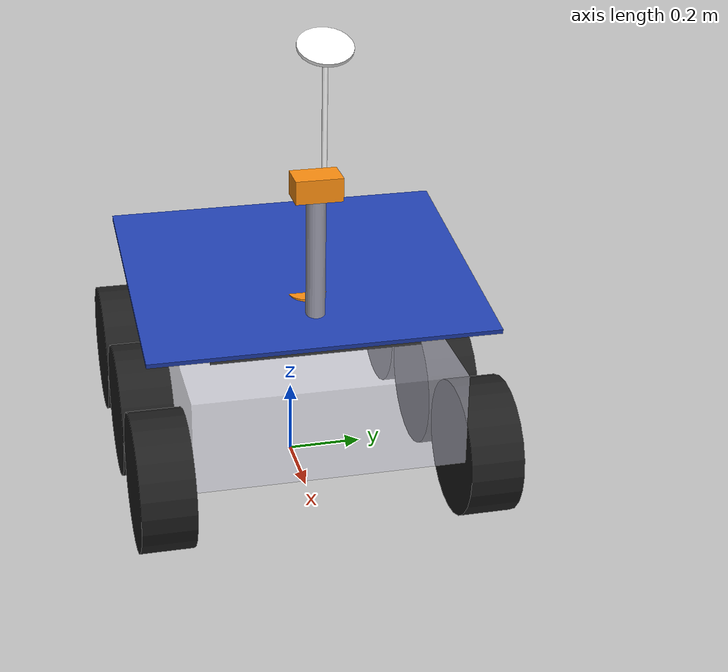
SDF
<sdf version='1.11'>
  <model name='lunar_rover'>
    <link name='base_footprint'>
      <inertial>
        <pose>0.016666666666666659 0.0016666666666666659 0.37855555555555559 0 0 0</pose>
        <mass>18</mass>
        <inertia>
          <ixx>1.0591291359493979</ixx>
          <ixy>0.0079999999999999967</ixy>
          <ixz>-0.084729376993739725</ixz>
          <iyy>1.770404444444444</iyy>
          <iyz>-0.014743333333333339</iyz>
          <izz>2.1049767751617141</izz>
        </inertia>
      </inertial>
      <collision name='base_footprint_fixed_joint_lump__base_link_collision'>
        <pose>0 0 0.33000000000000002 0 0 0</pose>
        <geometry>
          <box>
            <size>1 0.69999999999999996 0.25</size>
          </box>
        </geometry>
        <surface>
          <contact>
            <ode/>
          </contact>
          <friction>
            <ode>
              <mu>0.29999999999999999</mu>
              <mu2>0.29999999999999999</mu2>
            </ode>
          </friction>
        </surface>
      </collision>
      <collision name='base_footprint_fixed_joint_lump__equipment_deck_collision_1'>
        <pose>0 0 0.495 0 0 0</pose>
        <geometry>
          <box>
            <size>0.65000000000000002 0.55000000000000004 0.059999999999999998</size>
          </box>
        </geometry>
      </collision>
      <collision name='base_footprint_fixed_joint_lump__antenna_collision_2'>
        <pose>-0.25 0.14999999999999999 0.79499999999999993 0 0 0</pose>
        <geometry>
          <cylinder>
            <length>0.55000000000000004</length>
            <radius>0.0080000000000000002</radius>
          </cylinder>
        </geometry>
      </collision>
      <collision name='base_footprint_fixed_joint_lump__antenna_dish_collision_3'>
        <pose>-0.25 0.14999999999999999 1.095 0 0.39999999999999997 0</pose>
        <geometry>
          <cylinder>
            <length>0.01</length>
            <radius>0.080000000000000002</radius>
          </cylinder>
        </geometry>
      </collision>
      <collision name='base_footprint_fixed_joint_lump__camera_mast_collision_4'>
        <pose>0.29999999999999999 0 0.69500000000000006 0 0 0</pose>
        <geometry>
          <cylinder>
            <length>0.40000000000000002</length>
            <radius>0.025000000000000001</radius>
          </cylinder>
        </geometry>
      </collision>
      <collision name='base_footprint_fixed_joint_lump__camera_link_collision_5'>
        <pose>0.29999999999999999 0 0.91500000000000004 0 0 0</pose>
        <geometry>
          <box>
            <size>0.080000000000000002 0.12 0.059999999999999998</size>
          </box>
        </geometry>
      </collision>
      <collision name='base_footprint_fixed_joint_lump__lidar_link_collision_6'>
        <pose>0.20000000000000001 0 0.55500000000000005 0 0 0</pose>
        <geometry>
          <cylinder>
            <length>0.059999999999999998</length>
            <radius>0.050000000000000003</radius>
          </cylinder>
        </geometry>
        <surface>
          <contact>
            <ode/>
          </contact>
          <friction>
            <ode/>
          </friction>
        </surface>
      </collision>
      <collision name='base_footprint_fixed_joint_lump__solar_panel_collision_7'>
        <pose>0.10000000000000001 0 0.59499999999999997 0 0.14999999999999999 0</pose>
        <geometry>
          <box>
            <size>0.69999999999999996 0.90000000000000002 0.012</size>
          </box>
        </geometry>
      </collision>
      <visual name='base_footprint_fixed_joint_lump__base_link_visual'>
        <pose>0 0 0.33000000000000002 0 0 0</pose>
        <geometry>
          <box>
            <size>1 0.69999999999999996 0.25</size>
          </box>
        </geometry>
        <material>
          <script>
            <name>Gazebo/GreyTransparent</name>
            <uri>file://media/materials/scripts/gazebo.material</uri>
          </script>
          <diffuse>0.900000036 0.900000036 0.974999964 1</diffuse>
          <ambient>0.900000036 0.900000036 0.974999964 1</ambient>
        </material>
      </visual>
      <visual name='base_footprint_fixed_joint_lump__equipment_deck_visual_1'>
        <pose>0 0 0.495 0 0 0</pose>
        <geometry>
          <box>
            <size>0.65000000000000002 0.55000000000000004 0.059999999999999998</size>
          </box>
        </geometry>
        <material>
          <diffuse>0.225000009 0.225000009 0.225000009 1</diffuse>
          <ambient>0.225000009 0.225000009 0.225000009 1</ambient>
        </material>
      </visual>
      <visual name='base_footprint_fixed_joint_lump__antenna_visual_2'>
        <pose>-0.25 0.14999999999999999 0.79499999999999993 0 0 0</pose>
        <geometry>
          <cylinder>
            <length>0.55000000000000004</length>
            <radius>0.0080000000000000002</radius>
          </cylinder>
        </geometry>
        <material>
          <diffuse>1 1 1 1</diffuse>
          <ambient>1 1 1 1</ambient>
        </material>
      </visual>
      <visual name='base_footprint_fixed_joint_lump__antenna_dish_visual_3'>
        <pose>-0.25 0.14999999999999999 1.095 0 0.39999999999999997 0</pose>
        <geometry>
          <cylinder>
            <length>0.01</length>
            <radius>0.080000000000000002</radius>
          </cylinder>
        </geometry>
        <material>
          <diffuse>1 1 1 1</diffuse>
          <ambient>1 1 1 1</ambient>
        </material>
      </visual>
      <visual name='base_footprint_fixed_joint_lump__camera_mast_visual_4'>
        <pose>0.29999999999999999 0 0.69500000000000006 0 0 0</pose>
        <geometry>
          <cylinder>
            <length>0.40000000000000002</length>
            <radius>0.025000000000000001</radius>
          </cylinder>
        </geometry>
        <material>
          <diffuse>0.625 0.625 0.6875 1</diffuse>
          <ambient>0.625 0.625 0.6875 1</ambient>
        </material>
      </visual>
      <visual name='base_footprint_fixed_joint_lump__camera_link_visual_5'>
        <pose>0.29999999999999999 0 0.91500000000000004 0 0 0</pose>
        <geometry>
          <box>
            <size>0.080000000000000002 0.12 0.059999999999999998</size>
          </box>
        </geometry>
        <material>
          <diffuse>1 0.5625 0.0625 1</diffuse>
          <ambient>1 0.5625 0.0625 1</ambient>
        </material>
      </visual>
      <visual name='base_footprint_fixed_joint_lump__lidar_link_visual_6'>
        <pose>0.20000000000000001 0 0.55500000000000005 0 0 0</pose>
        <geometry>
          <cylinder>
            <length>0.059999999999999998</length>
            <radius>0.050000000000000003</radius>
          </cylinder>
        </geometry>
        <material>
          <diffuse>1 0.5625 0.0625 1</diffuse>
          <ambient>1 0.5625 0.0625 1</ambient>
        </material>
      </visual>
      <visual name='base_footprint_fixed_joint_lump__solar_panel_visual_7'>
        <pose>0.10000000000000001 0 0.59499999999999997 0 0.14999999999999999 0</pose>
        <geometry>
          <box>
            <size>0.69999999999999996 0.90000000000000002 0.012</size>
          </box>
        </geometry>
        <material>
          <diffuse>0.125 0.25 0.6875 1</diffuse>
          <ambient>0.125 0.25 0.6875 1</ambient>
        </material>
      </visual>
      <sensor name='imu_sensor' type='imu'>
        <always_on>true</always_on>
        <update_rate>50</update_rate>
        <visualize>true</visualize>
        <topic>/imu/data</topic>
        <pose>0 0 0.33000000000000002 0 0 0</pose>
        <imu/>
      </sensor>
      <sensor name='lidar_sensor' type='gpu_lidar'>
        <always_on>true</always_on>
        <visualize>true</visualize>
        <update_rate>10</update_rate>
        <topic>/scan</topic>
        <lidar>
          <scan>
            <horizontal>
              <samples>360</samples>
              <resolution>1</resolution>
              <min_angle>-3.1415899999999999</min_angle>
              <max_angle>3.1415899999999999</max_angle>
            </horizontal>
          </scan>
          <range>
            <min>0.10000000000000001</min>
            <max>20</max>
            <resolution>0.01</resolution>
          </range>
        </lidar>
        <pose>0.20000000000000001 0 0.55500000000000005 0 0 0</pose>
        <gz_frame_id>lidar_link</gz_frame_id>
      </sensor>
    </link>
    <joint name='front_left_joint' type='revolute'>
      <pose relative_to='base_footprint'>0.38 0.41999999999999998 0.17999999999999999 0 0 0</pose>
      <parent>base_footprint</parent>
      <child>front_left_wheel</child>
      <axis>
        <xyz>0 1 0</xyz>
        <limit>
          <effort>100</effort>
          <velocity>10</velocity>
          <lower>-inf</lower>
          <upper>inf</upper>
        </limit>
        <dynamics>
          <damping>0.10000000000000001</damping>
          <friction>0.050000000000000003</friction>
          <spring_reference>0</spring_reference>
          <spring_stiffness>0</spring_stiffness>
        </dynamics>
      </axis>
    </joint>
    <link name='front_left_wheel'>
      <pose relative_to='front_left_joint'>0 0 0 0 0 0</pose>
      <inertial>
        <pose>0 0 0 0 0 0</pose>
        <mass>1.5</mass>
        <inertia>
          <ixx>0.0146</ixx>
          <ixy>0</ixy>
          <ixz>0</ixz>
          <iyy>0.024299999999999999</iyy>
          <iyz>0</iyz>
          <izz>0.0146</izz>
        </inertia>
      </inertial>
      <collision name='front_left_wheel_collision_collision'>
        <pose>0 0 0 1.5707963000000003 0 0</pose>
        <geometry>
          <cylinder>
            <length>0.14000000000000001</length>
            <radius>0.17999999999999999</radius>
          </cylinder>
        </geometry>
        <surface>
          <friction>
            <ode>
              <mu>0.75</mu>
              <mu2>0.75</mu2>
              <fdir1>1 0 0</fdir1>
            </ode>
            <bullet>
              <friction>0.75</friction>
              <friction2>0.75</friction2>
              <fdir1>1 0 0</fdir1>
            </bullet>
          </friction>
          <contact>
            <ode>
              <kp>50000</kp>
              <kd>5000</kd>
              <min_depth>0.0001</min_depth>
              <max_vel>0.050000000000000003</max_vel>
            </ode>
            <bullet>
              <kp>50000</kp>
              <kd>5000</kd>
              <split_impulse>true</split_impulse>
              <split_impulse_penetration_threshold>-0.01</split_impulse_penetration_threshold>
            </bullet>
          </contact>
        </surface>
      </collision>
      <visual name='front_left_wheel_visual'>
        <pose>0 0 0 1.5707963000000003 0 0</pose>
        <geometry>
          <cylinder>
            <length>0.14000000000000001</length>
            <radius>0.17999999999999999</radius>
          </cylinder>
        </geometry>
        <material>
          <script>
            <name>Gazebo/Black</name>
            <uri>file://media/materials/scripts/gazebo.material</uri>
          </script>
          <diffuse>0.125 0.125 0.125 1</diffuse>
          <ambient>0.125 0.125 0.125 1</ambient>
        </material>
      </visual>
    </link>
    <joint name='front_right_joint' type='revolute'>
      <pose relative_to='base_footprint'>0.38 -0.41999999999999998 0.17999999999999999 0 0 0</pose>
      <parent>base_footprint</parent>
      <child>front_right_wheel</child>
      <axis>
        <xyz>0 1 0</xyz>
        <limit>
          <effort>100</effort>
          <velocity>10</velocity>
          <lower>-inf</lower>
          <upper>inf</upper>
        </limit>
        <dynamics>
          <damping>0.10000000000000001</damping>
          <friction>0.050000000000000003</friction>
          <spring_reference>0</spring_reference>
          <spring_stiffness>0</spring_stiffness>
        </dynamics>
      </axis>
    </joint>
    <link name='front_right_wheel'>
      <pose relative_to='front_right_joint'>0 0 0 0 0 0</pose>
      <inertial>
        <pose>0 0 0 0 0 0</pose>
        <mass>1.5</mass>
        <inertia>
          <ixx>0.0146</ixx>
          <ixy>0</ixy>
          <ixz>0</ixz>
          <iyy>0.024299999999999999</iyy>
          <iyz>0</iyz>
          <izz>0.0146</izz>
        </inertia>
      </inertial>
      <collision name='front_right_wheel_collision_collision'>
        <pose>0 0 0 1.5707963000000003 0 0</pose>
        <geometry>
          <cylinder>
            <length>0.14000000000000001</length>
            <radius>0.17999999999999999</radius>
          </cylinder>
        </geometry>
        <surface>
          <friction>
            <ode>
              <mu>0.75</mu>
              <mu2>0.75</mu2>
              <fdir1>1 0 0</fdir1>
            </ode>
            <bullet>
              <friction>0.75</friction>
              <friction2>0.75</friction2>
              <fdir1>1 0 0</fdir1>
            </bullet>
          </friction>
          <contact>
            <ode>
              <kp>50000</kp>
              <kd>5000</kd>
              <min_depth>0.0001</min_depth>
              <max_vel>0.050000000000000003</max_vel>
            </ode>
            <bullet>
              <kp>50000</kp>
              <kd>5000</kd>
              <split_impulse>true</split_impulse>
              <split_impulse_penetration_threshold>-0.01</split_impulse_penetration_threshold>
            </bullet>
          </contact>
        </surface>
      </collision>
      <visual name='front_right_wheel_visual'>
        <pose>0 0 0 1.5707963000000003 0 0</pose>
        <geometry>
          <cylinder>
            <length>0.14000000000000001</length>
            <radius>0.17999999999999999</radius>
          </cylinder>
        </geometry>
        <material>
          <script>
            <name>Gazebo/Black</name>
            <uri>file://media/materials/scripts/gazebo.material</uri>
          </script>
          <diffuse>0.125 0.125 0.125 1</diffuse>
          <ambient>0.125 0.125 0.125 1</ambient>
        </material>
      </visual>
    </link>
    <joint name='mid_left_joint' type='revolute'>
      <pose relative_to='base_footprint'>0 0.41999999999999998 0.17999999999999999 0 0 0</pose>
      <parent>base_footprint</parent>
      <child>mid_left_wheel</child>
      <axis>
        <xyz>0 1 0</xyz>
        <limit>
          <effort>100</effort>
          <velocity>10</velocity>
          <lower>-inf</lower>
          <upper>inf</upper>
        </limit>
        <dynamics>
          <damping>0.10000000000000001</damping>
          <friction>0.050000000000000003</friction>
          <spring_reference>0</spring_reference>
          <spring_stiffness>0</spring_stiffness>
        </dynamics>
      </axis>
    </joint>
    <link name='mid_left_wheel'>
      <pose relative_to='mid_left_joint'>0 0 0 0 0 0</pose>
      <inertial>
        <pose>0 0 0 0 0 0</pose>
        <mass>1.5</mass>
        <inertia>
          <ixx>0.0146</ixx>
          <ixy>0</ixy>
          <ixz>0</ixz>
          <iyy>0.024299999999999999</iyy>
          <iyz>0</iyz>
          <izz>0.0146</izz>
        </inertia>
      </inertial>
      <collision name='mid_left_wheel_collision_collision'>
        <pose>0 0 0 1.5707963000000003 0 0</pose>
        <geometry>
          <cylinder>
            <length>0.14000000000000001</length>
            <radius>0.17999999999999999</radius>
          </cylinder>
        </geometry>
        <surface>
          <friction>
            <ode>
              <mu>0.84999999999999998</mu>
              <mu2>0.84999999999999998</mu2>
              <fdir1>1 0 0</fdir1>
            </ode>
            <bullet>
              <friction>0.84999999999999998</friction>
              <friction2>0.84999999999999998</friction2>
              <fdir1>1 0 0</fdir1>
            </bullet>
          </friction>
          <contact>
            <ode>
              <kp>50000</kp>
              <kd>5000</kd>
              <min_depth>0.0001</min_depth>
              <max_vel>0.050000000000000003</max_vel>
            </ode>
            <bullet>
              <kp>50000</kp>
              <kd>5000</kd>
              <split_impulse>true</split_impulse>
              <split_impulse_penetration_threshold>-0.01</split_impulse_penetration_threshold>
            </bullet>
          </contact>
        </surface>
      </collision>
      <visual name='mid_left_wheel_visual'>
        <pose>0 0 0 1.5707963000000003 0 0</pose>
        <geometry>
          <cylinder>
            <length>0.14000000000000001</length>
            <radius>0.17999999999999999</radius>
          </cylinder>
        </geometry>
        <material>
          <script>
            <name>Gazebo/Black</name>
            <uri>file://media/materials/scripts/gazebo.material</uri>
          </script>
          <diffuse>0.125 0.125 0.125 1</diffuse>
          <ambient>0.125 0.125 0.125 1</ambient>
        </material>
      </visual>
    </link>
    <joint name='mid_right_joint' type='revolute'>
      <pose relative_to='base_footprint'>0 -0.41999999999999998 0.17999999999999999 0 0 0</pose>
      <parent>base_footprint</parent>
      <child>mid_right_wheel</child>
      <axis>
        <xyz>0 1 0</xyz>
        <limit>
          <effort>100</effort>
          <velocity>10</velocity>
          <lower>-inf</lower>
          <upper>inf</upper>
        </limit>
        <dynamics>
          <damping>0.10000000000000001</damping>
          <friction>0.050000000000000003</friction>
          <spring_reference>0</spring_reference>
          <spring_stiffness>0</spring_stiffness>
        </dynamics>
      </axis>
    </joint>
    <link name='mid_right_wheel'>
      <pose relative_to='mid_right_joint'>0 0 0 0 0 0</pose>
      <inertial>
        <pose>0 0 0 0 0 0</pose>
        <mass>1.5</mass>
        <inertia>
          <ixx>0.0146</ixx>
          <ixy>0</ixy>
          <ixz>0</ixz>
          <iyy>0.024299999999999999</iyy>
          <iyz>0</iyz>
          <izz>0.0146</izz>
        </inertia>
      </inertial>
      <collision name='mid_right_wheel_collision_collision'>
        <pose>0 0 0 1.5707963000000003 0 0</pose>
        <geometry>
          <cylinder>
            <length>0.14000000000000001</length>
            <radius>0.17999999999999999</radius>
          </cylinder>
        </geometry>
        <surface>
          <friction>
            <ode>
              <mu>0.84999999999999998</mu>
              <mu2>0.84999999999999998</mu2>
              <fdir1>1 0 0</fdir1>
            </ode>
            <bullet>
              <friction>0.84999999999999998</friction>
              <friction2>0.84999999999999998</friction2>
              <fdir1>1 0 0</fdir1>
            </bullet>
          </friction>
          <contact>
            <ode>
              <kp>50000</kp>
              <kd>5000</kd>
              <min_depth>0.0001</min_depth>
              <max_vel>0.050000000000000003</max_vel>
            </ode>
            <bullet>
              <kp>50000</kp>
              <kd>5000</kd>
              <split_impulse>true</split_impulse>
              <split_impulse_penetration_threshold>-0.01</split_impulse_penetration_threshold>
            </bullet>
          </contact>
        </surface>
      </collision>
      <visual name='mid_right_wheel_visual'>
        <pose>0 0 0 1.5707963000000003 0 0</pose>
        <geometry>
          <cylinder>
            <length>0.14000000000000001</length>
            <radius>0.17999999999999999</radius>
          </cylinder>
        </geometry>
        <material>
          <script>
            <name>Gazebo/Black</name>
            <uri>file://media/materials/scripts/gazebo.material</uri>
          </script>
          <diffuse>0.125 0.125 0.125 1</diffuse>
          <ambient>0.125 0.125 0.125 1</ambient>
        </material>
      </visual>
    </link>
    <joint name='rear_left_joint' type='revolute'>
      <pose relative_to='base_footprint'>-0.38 0.41999999999999998 0.17999999999999999 0 0 0</pose>
      <parent>base_footprint</parent>
      <child>rear_left_wheel</child>
      <axis>
        <xyz>0 1 0</xyz>
        <limit>
          <effort>100</effort>
          <velocity>10</velocity>
          <lower>-inf</lower>
          <upper>inf</upper>
        </limit>
        <dynamics>
          <damping>0.10000000000000001</damping>
          <friction>0.050000000000000003</friction>
          <spring_reference>0</spring_reference>
          <spring_stiffness>0</spring_stiffness>
        </dynamics>
      </axis>
    </joint>
    <link name='rear_left_wheel'>
      <pose relative_to='rear_left_joint'>0 0 0 0 0 0</pose>
      <inertial>
        <pose>0 0 0 0 0 0</pose>
        <mass>1.5</mass>
        <inertia>
          <ixx>0.0146</ixx>
          <ixy>0</ixy>
          <ixz>0</ixz>
          <iyy>0.024299999999999999</iyy>
          <iyz>0</iyz>
          <izz>0.0146</izz>
        </inertia>
      </inertial>
      <collision name='rear_left_wheel_collision_collision'>
        <pose>0 0 0 1.5707963000000003 0 0</pose>
        <geometry>
          <cylinder>
            <length>0.14000000000000001</length>
            <radius>0.17999999999999999</radius>
          </cylinder>
        </geometry>
        <surface>
          <friction>
            <ode>
              <mu>0.75</mu>
              <mu2>0.75</mu2>
              <fdir1>1 0 0</fdir1>
            </ode>
            <bullet>
              <friction>0.75</friction>
              <friction2>0.75</friction2>
              <fdir1>1 0 0</fdir1>
            </bullet>
          </friction>
          <contact>
            <ode>
              <kp>50000</kp>
              <kd>5000</kd>
              <min_depth>0.0001</min_depth>
              <max_vel>0.050000000000000003</max_vel>
            </ode>
            <bullet>
              <kp>50000</kp>
              <kd>5000</kd>
              <split_impulse>true</split_impulse>
              <split_impulse_penetration_threshold>-0.01</split_impulse_penetration_threshold>
            </bullet>
          </contact>
        </surface>
      </collision>
      <visual name='rear_left_wheel_visual'>
        <pose>0 0 0 1.5707963000000003 0 0</pose>
        <geometry>
          <cylinder>
            <length>0.14000000000000001</length>
            <radius>0.17999999999999999</radius>
          </cylinder>
        </geometry>
        <material>
          <script>
            <name>Gazebo/Black</name>
            <uri>file://media/materials/scripts/gazebo.material</uri>
          </script>
          <diffuse>0.125 0.125 0.125 1</diffuse>
          <ambient>0.125 0.125 0.125 1</ambient>
        </material>
      </visual>
    </link>
    <joint name='rear_right_joint' type='revolute'>
      <pose relative_to='base_footprint'>-0.38 -0.41999999999999998 0.17999999999999999 0 0 0</pose>
      <parent>base_footprint</parent>
      <child>rear_right_wheel</child>
      <axis>
        <xyz>0 1 0</xyz>
        <limit>
          <effort>100</effort>
          <velocity>10</velocity>
          <lower>-inf</lower>
          <upper>inf</upper>
        </limit>
        <dynamics>
          <damping>0.10000000000000001</damping>
          <friction>0.050000000000000003</friction>
          <spring_reference>0</spring_reference>
          <spring_stiffness>0</spring_stiffness>
        </dynamics>
      </axis>
    </joint>
    <link name='rear_right_wheel'>
      <pose relative_to='rear_right_joint'>0 0 0 0 0 0</pose>
      <inertial>
        <pose>0 0 0 0 0 0</pose>
        <mass>1.5</mass>
        <inertia>
          <ixx>0.0146</ixx>
          <ixy>0</ixy>
          <ixz>0</ixz>
          <iyy>0.024299999999999999</iyy>
          <iyz>0</iyz>
          <izz>0.0146</izz>
        </inertia>
      </inertial>
      <collision name='rear_right_wheel_collision_collision'>
        <pose>0 0 0 1.5707963000000003 0 0</pose>
        <geometry>
          <cylinder>
            <length>0.14000000000000001</length>
            <radius>0.17999999999999999</radius>
          </cylinder>
        </geometry>
        <surface>
          <friction>
            <ode>
              <mu>0.75</mu>
              <mu2>0.75</mu2>
              <fdir1>1 0 0</fdir1>
            </ode>
            <bullet>
              <friction>0.75</friction>
              <friction2>0.75</friction2>
              <fdir1>1 0 0</fdir1>
            </bullet>
          </friction>
          <contact>
            <ode>
              <kp>50000</kp>
              <kd>5000</kd>
              <min_depth>0.0001</min_depth>
              <max_vel>0.050000000000000003</max_vel>
            </ode>
            <bullet>
              <kp>50000</kp>
              <kd>5000</kd>
              <split_impulse>true</split_impulse>
              <split_impulse_penetration_threshold>-0.01</split_impulse_penetration_threshold>
            </bullet>
          </contact>
        </surface>
      </collision>
      <visual name='rear_right_wheel_visual'>
        <pose>0 0 0 1.5707963000000003 0 0</pose>
        <geometry>
          <cylinder>
            <length>0.14000000000000001</length>
            <radius>0.17999999999999999</radius>
          </cylinder>
        </geometry>
        <material>
          <script>
            <name>Gazebo/Black</name>
            <uri>file://media/materials/scripts/gazebo.material</uri>
          </script>
          <diffuse>0.125 0.125 0.125 1</diffuse>
          <ambient>0.125 0.125 0.125 1</ambient>
        </material>
      </visual>
    </link>
    <plugin name='gz::sim::systems::DiffDrive' filename='libgz-sim-diff-drive-system.so'>
      <left_joint>front_left_joint</left_joint>
      <left_joint>mid_left_joint</left_joint>
      <left_joint>rear_left_joint</left_joint>
      <right_joint>front_right_joint</right_joint>
      <right_joint>mid_right_joint</right_joint>
      <right_joint>rear_right_joint</right_joint>
      <wheel_separation>0.84</wheel_separation>
      <wheel_radius>0.18</wheel_radius>
      <max_linear_velocity>0.5</max_linear_velocity>
      <min_linear_velocity>-0.5</min_linear_velocity>
      <max_angular_velocity>1.0</max_angular_velocity>
      <min_angular_velocity>-1.0</min_angular_velocity>
      <max_linear_acceleration>1.5</max_linear_acceleration>
      <max_angular_acceleration>2.0</max_angular_acceleration>
      <topic>cmd_vel</topic>
      <odom_topic>odometry</odom_topic>
      <tf_topic>tf</tf_topic>
      <frame_id>odom</frame_id>
      <child_frame_id>base_footprint</child_frame_id>
      <odom_publish_frequency>30</odom_publish_frequency>
    </plugin>
    <plugin name='gz::sim::systems::JointStatePublisher' filename='libgz-sim-joint-state-publisher-system.so'/>
    <frame name='antenna_dish_joint' attached_to='antenna'>
      <pose>0 0 0.29999999999999999 0 0.39999999999999986 0</pose>
    </frame>
    <frame name='antenna_dish' attached_to='antenna_dish_joint'>
      <pose>0 0 0 0 0 0</pose>
    </frame>
    <frame name='antenna_joint' attached_to='equipment_deck'>
      <pose>-0.25 0.14999999999999999 0.29999999999999999 0 0 0</pose>
    </frame>
    <frame name='antenna' attached_to='antenna_joint'>
      <pose>0 0 0 0 0 0</pose>
    </frame>
    <frame name='camera_optical_joint' attached_to='camera_link'>
      <pose>0.040000000000000001 0 0 -1.5707963267948959 -5.5511151231257827e-17 -1.5707963267948959</pose>
    </frame>
    <frame name='camera_optical_frame' attached_to='camera_optical_joint'>
      <pose>0 0 0 0 0 0</pose>
    </frame>
    <frame name='camera_head_joint' attached_to='camera_mast'>
      <pose>0 0 0.22 0 0 0</pose>
    </frame>
    <frame name='camera_link' attached_to='camera_head_joint'>
      <pose>0 0 0 0 0 0</pose>
    </frame>
    <frame name='camera_mast_joint' attached_to='equipment_deck'>
      <pose>0.29999999999999999 0 0.20000000000000001 0 0 0</pose>
    </frame>
    <frame name='camera_mast' attached_to='camera_mast_joint'>
      <pose>0 0 0 0 0 0</pose>
    </frame>
    <frame name='lidar_joint' attached_to='equipment_deck'>
      <pose>0.20000000000000001 0 0.059999999999999998 0 0 0</pose>
    </frame>
    <frame name='lidar_link' attached_to='lidar_joint'>
      <pose>0 0 0 0 0 0</pose>
    </frame>
    <frame name='solar_panel_joint' attached_to='equipment_deck'>
      <pose>0.10000000000000001 0 0.10000000000000001 0 0.14999999999999999 0</pose>
    </frame>
    <frame name='solar_panel' attached_to='solar_panel_joint'>
      <pose>0 0 0 0 0 0</pose>
    </frame>
    <frame name='deck_joint' attached_to='base_link'>
      <pose>0 0 0.16500000000000001 0 0 0</pose>
    </frame>
    <frame name='equipment_deck' attached_to='deck_joint'>
      <pose>0 0 0 0 0 0</pose>
    </frame>
    <frame name='base_footprint_joint' attached_to='base_footprint'>
      <pose>0 0 0.33000000000000002 0 0 0</pose>
    </frame>
    <frame name='base_link' attached_to='base_footprint_joint'>
      <pose>0 0 0 0 0 0</pose>
    </frame>
  </model>
</sdf>
